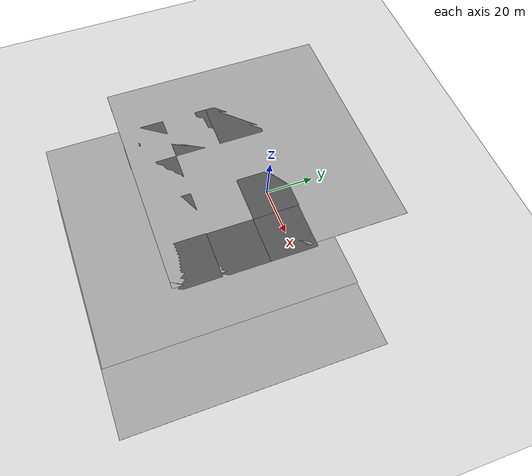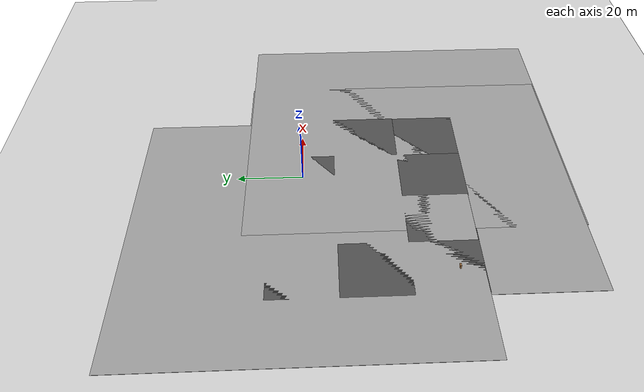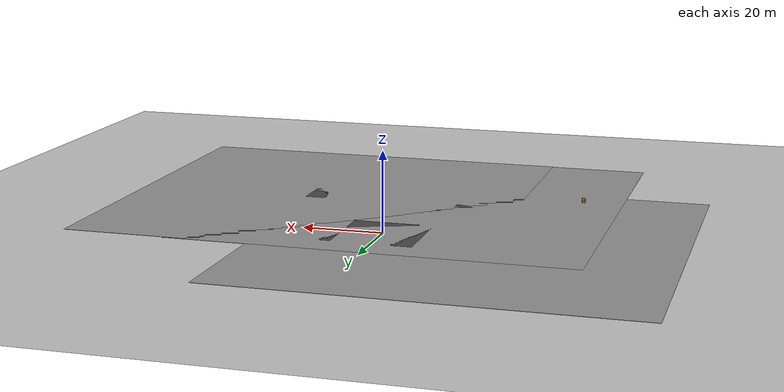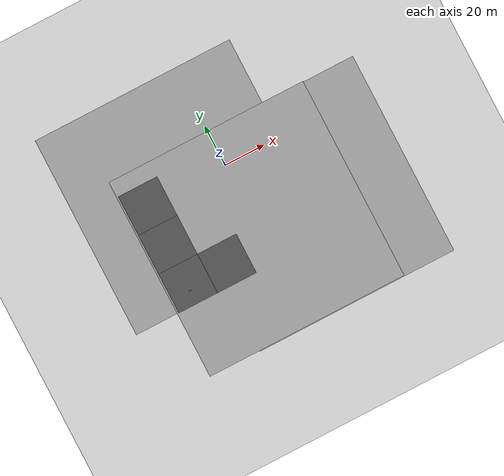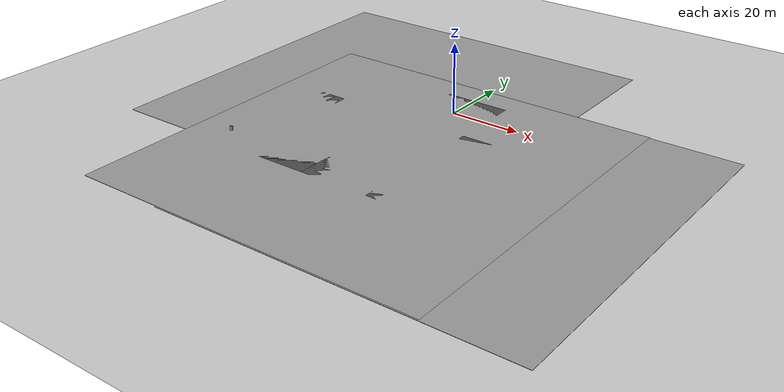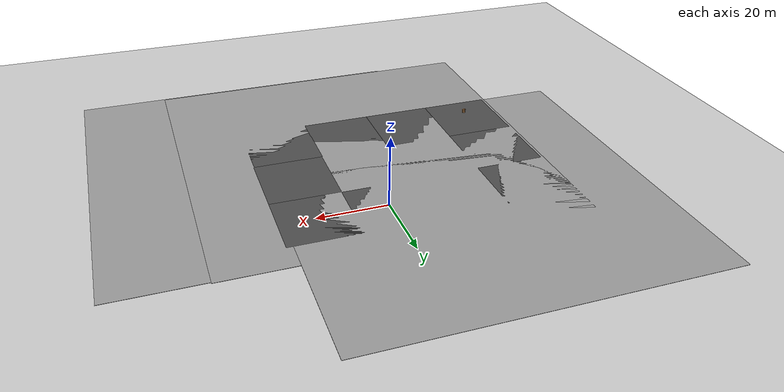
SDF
<sdf version="1.7">
 <world name="default">
  <model name="ground_plane">
   <static>1</static>
   <link name="link">
    <collision name="collision">
     <geometry><plane><normal>0 0 1</normal><size>100 100</size></plane></geometry>
     <surface><friction><ode><mu>100</mu><mu2>50</mu2></ode></friction></surface>
    </collision>
    <visual name="visual">
     <cast_shadows>0</cast_shadows>
     <geometry><plane><normal>0 0 1</normal><size>100 100</size></plane></geometry>
     <material>
      <script><uri>file://media/materials/scripts/gazebo.material</uri><name>Gazebo/Grey</name></script>
     </material>
    </visual>
   </link>
  </model>
  <model name="asphalt_plane">
   <static>1</static>
   <link name="link">
    <collision name="collision"><geometry><box><size>20 20 0.1</size></box></geometry></collision>
    <visual name="visual">
     <cast_shadows>0</cast_shadows>
     <geometry><box><size>20 20 0.1</size></box></geometry>
     <material>
      <script>
       <uri>model://asphalt_plane/materials/scripts</uri>
       <uri>model://asphalt_plane/materials/textures</uri>
       <name>vrc/asphalt</name>
      </script>
     </material>
    </visual>
   </link>
   <pose>-40.0367 -19.9871 0 0 -0 0</pose>
  </model>
  <model name="asphalt_plane_0">
   <static>1</static>
   <link name="link">
    <collision name="collision"><geometry><box><size>20 20 0.1</size></box></geometry></collision>
    <visual name="visual">
     <cast_shadows>0</cast_shadows>
     <geometry><box><size>20 20 0.1</size></box></geometry>
     <material>
      <script>
       <uri>model://asphalt_plane/materials/scripts</uri>
       <uri>model://asphalt_plane/materials/textures</uri>
       <name>vrc/asphalt</name>
      </script>
     </material>
    </visual>
   </link>
   <pose>-40.0263 -39.9965 0 0 -0 0</pose>
  </model>
  <model name="asphalt_plane_1">
   <static>1</static>
   <link name="link">
    <collision name="collision"><geometry><box><size>20 20 0.1</size></box></geometry></collision>
    <visual name="visual">
     <cast_shadows>0</cast_shadows>
     <geometry><box><size>20 20 0.1</size></box></geometry>
     <material>
      <script>
       <uri>model://asphalt_plane/materials/scripts</uri>
       <uri>model://asphalt_plane/materials/textures</uri>
       <name>vrc/asphalt</name>
      </script>
     </material>
    </visual>
   </link>
   <pose>-20.0646 -40.0371 0 0 -0 0</pose>
  </model>
  <model name="asphalt_plane_2">
   <static>1</static>
   <link name="link">
    <collision name="collision"><geometry><box><size>20 20 0.1</size></box></geometry></collision>
    <visual name="visual">
     <cast_shadows>0</cast_shadows>
     <geometry><box><size>20 20 0.1</size></box></geometry>
     <material>
      <script>
       <uri>model://asphalt_plane/materials/scripts</uri>
       <uri>model://asphalt_plane/materials/textures</uri>
       <name>vrc/asphalt</name>
      </script>
     </material>
    </visual>
   </link>
   <pose>-40.0183 -0.089961 0 0 -0 0</pose>
  </model>
  <model name="bookshelf">
   <static>1</static>
   <link name="link">
    <inertial><mass>1</mass></inertial>
    <collision name="back">
     <pose>0 0.005 0.6 0 -0 0</pose>
     <geometry><box><size>0.9 0.01 1.2</size></box></geometry>
    </collision>
    <visual name="visual1">
     <pose>0 0.005 0.6 0 -0 0</pose>
     <geometry><box><size>0.9 0.01 1.2</size></box></geometry>
     <material>
      <script><uri>file://media/materials/scripts/gazebo.material</uri><name>Gazebo/Wood</name></script>
     </material>
    </visual>
    <collision name="left_side">
     <pose>0.45 -0.195 0.6 0 -0 0</pose>
     <geometry><box><size>0.02 0.4 1.2</size></box></geometry>
    </collision>
    <visual name="visual2">
     <pose>0.45 -0.195 0.6 0 -0 0</pose>
     <geometry><box><size>0.02 0.4 1.2</size></box></geometry>
     <material>
      <script><uri>file://media/materials/scripts/gazebo.material</uri><name>Gazebo/Wood</name></script>
     </material>
    </visual>
    <collision name="right_side">
     <pose>-0.45 -0.195 0.6 0 -0 0</pose>
     <geometry><box><size>0.02 0.4 1.2</size></box></geometry>
    </collision>
    <visual name="visual3">
     <pose>-0.45 -0.195 0.6 0 -0 0</pose>
     <geometry><box><size>0.02 0.4 1.2</size></box></geometry>
     <material>
      <script><uri>file://media/materials/scripts/gazebo.material</uri><name>Gazebo/Wood</name></script>
     </material>
    </visual>
    <collision name="bottom">
     <pose>0 -0.195 0.03 0 -0 0</pose>
     <geometry><box><size>0.88 0.4 0.06</size></box></geometry>
    </collision>
    <visual name="visual4">
     <pose>0 -0.195 0.03 0 -0 0</pose>
     <geometry><box><size>0.88 0.4 0.06</size></box></geometry>
     <material>
      <script><uri>file://media/materials/scripts/gazebo.material</uri><name>Gazebo/Wood</name></script>
     </material>
    </visual>
    <collision name="top">
     <pose>0 -0.195 1.19 0 -0 0</pose>
     <geometry><box><size>0.88 0.4 0.02</size></box></geometry>
    </collision>
    <visual name="visual5">
     <pose>0 -0.195 1.19 0 -0 0</pose>
     <geometry><box><size>0.88 0.4 0.02</size></box></geometry>
     <material>
      <script><uri>file://media/materials/scripts/gazebo.material</uri><name>Gazebo/Wood</name></script>
     </material>
    </visual>
    <collision name="low_shelf">
     <pose>0 -0.195 0.43 0 -0 0</pose>
     <geometry><box><size>0.88 0.4 0.02</size></box></geometry>
    </collision>
    <visual name="visual6">
     <pose>0 -0.195 0.43 0 -0 0</pose>
     <geometry><box><size>0.88 0.4 0.02</size></box></geometry>
     <material>
      <script><uri>file://media/materials/scripts/gazebo.material</uri><name>Gazebo/Wood</name></script>
     </material>
    </visual>
    <collision name="high_shelf">
     <pose>0 -0.195 0.8 0 -0 0</pose>
     <geometry><box><size>0.88 0.4 0.02</size></box></geometry>
    </collision>
    <visual name="visual7">
     <pose>0 -0.195 0.8 0 -0 0</pose>
     <geometry><box><size>0.88 0.4 0.02</size></box></geometry>
     <material>
      <script><uri>file://media/materials/scripts/gazebo.material</uri><name>Gazebo/Wood</name></script>
     </material>
    </visual>
   </link>
   <pose>-40.638 -43.3733 0.063116 0 0 -3.08884</pose>
  </model>
  <model name="ground_plane_0">
   <static>1</static>
   <link name="link">
    <collision name="collision">
     <geometry><plane><normal>0 0 1</normal><size>100 100</size></plane></geometry>
     <surface><friction><ode><mu>100</mu><mu2>50</mu2></ode></friction></surface>
    </collision>
    <visual name="visual">
     <cast_shadows>0</cast_shadows>
     <geometry><plane><normal>0 0 1</normal><size>100 100</size></plane></geometry>
     <material>
      <script><uri>file://media/materials/scripts/gazebo.material</uri><name>Gazebo/Grey</name></script>
     </material>
    </visual>
   </link>
   <pose>-0.776741 -32.2951 0 0 -0 0</pose>
  </model>
  <model name="ground_plane_1">
   <static>1</static>
   <link name="link">
    <collision name="collision">
     <geometry><plane><normal>0 0 1</normal><size>100 100</size></plane></geometry>
     <surface><friction><ode><mu>100</mu><mu2>50</mu2></ode></friction></surface>
    </collision>
    <visual name="visual">
     <cast_shadows>0</cast_shadows>
     <geometry><plane><normal>0 0 1</normal><size>100 100</size></plane></geometry>
     <material>
      <script><uri>file://media/materials/scripts/gazebo.material</uri><name>Gazebo/Grey</name></script>
     </material>
    </visual>
   </link>
   <pose>-21.8074 0.134926 0 0 -0 0</pose>
  </model>
  <model name="ground_plane_2">
   <static>1</static>
   <link name="link">
    <collision name="collision">
     <geometry><plane><normal>0 0 1</normal><size>100 100</size></plane></geometry>
     <surface><friction><ode><mu>100</mu><mu2>50</mu2></ode></friction></surface>
    </collision>
    <visual name="visual">
     <cast_shadows>0</cast_shadows>
     <geometry><plane><normal>0 0 1</normal><size>100 100</size></plane></geometry>
     <material>
      <script><uri>file://media/materials/scripts/gazebo.material</uri><name>Gazebo/Grey</name></script>
     </material>
    </visual>
   </link>
   <pose>24.6698 -32.6608 0 0 -0 0</pose>
  </model>
  <model name="asphalt_plane_5">
   <static>1</static>
   <link name="link">
    <collision name="collision"><geometry><box><size>20 20 0.1</size></box></geometry></collision>
    <visual name="visual">
     <cast_shadows>0</cast_shadows>
     <geometry><box><size>20 20 0.1</size></box></geometry>
     <material>
      <script>
       <uri>model://asphalt_plane/materials/scripts</uri>
       <uri>model://asphalt_plane/materials/textures</uri>
       <name>vrc/asphalt</name>
      </script>
     </material>
    </visual>
   </link>
   <pose>-0.051357 -40.0173 0 0 -0 0</pose>
  </model>
  <model name="asphalt_plane_5_clone">
   <static>1</static>
   <link name="link">
    <collision name="collision"><geometry><box><size>20 20 0.1</size></box></geometry></collision>
    <visual name="visual">
     <cast_shadows>0</cast_shadows>
     <geometry><box><size>20 20 0.1</size></box></geometry>
     <material>
      <script>
       <uri>model://asphalt_plane/materials/scripts</uri>
       <uri>model://asphalt_plane/materials/textures</uri>
       <name>vrc/asphalt</name>
      </script>
     </material>
    </visual>
   </link>
   <pose>19.8258 -39.9721 0 0 -0 0</pose>
  </model>
  <model name="asphalt_plane_5_clone_1">
   <static>1</static>
   <link name="link">
    <collision name="collision"><geometry><box><size>20 20 0.1</size></box></geometry></collision>
    <visual name="visual">
     <cast_shadows>0</cast_shadows>
     <geometry><box><size>20 20 0.1</size></box></geometry>
     <material>
      <script>
       <uri>model://asphalt_plane/materials/scripts</uri>
       <uri>model://asphalt_plane/materials/textures</uri>
       <name>vrc/asphalt</name>
      </script>
     </material>
    </visual>
   </link>
   <pose>20.0104 -20.1008 0 0 -0 0</pose>
  </model>
  <model name="asphalt_plane_5_clone_2">
   <static>1</static>
   <link name="link">
    <collision name="collision"><geometry><box><size>20 20 0.1</size></box></geometry></collision>
    <visual name="visual">
     <cast_shadows>0</cast_shadows>
     <geometry><box><size>20 20 0.1</size></box></geometry>
     <material>
      <script>
       <uri>model://asphalt_plane/materials/scripts</uri>
       <uri>model://asphalt_plane/materials/textures</uri>
       <name>vrc/asphalt</name>
      </script>
     </material>
    </visual>
   </link>
   <pose>20.0077 -0.164108 0 0 -0 0</pose>
  </model>
  <model name="asphalt_plane_5_clone_8">
   <static>1</static>
   <link name="link">
    <collision name="collision"><geometry><box><size>20 20 0.1</size></box></geometry></collision>
    <visual name="visual">
     <cast_shadows>0</cast_shadows>
     <geometry><box><size>20 20 0.1</size></box></geometry>
     <material>
      <script>
       <uri>model://asphalt_plane/materials/scripts</uri>
       <uri>model://asphalt_plane/materials/textures</uri>
       <name>vrc/asphalt</name>
      </script>
     </material>
    </visual>
   </link>
   <pose>0.121525 0.087124 0 0 -0 0</pose>
  </model>
 </world>
</sdf>
